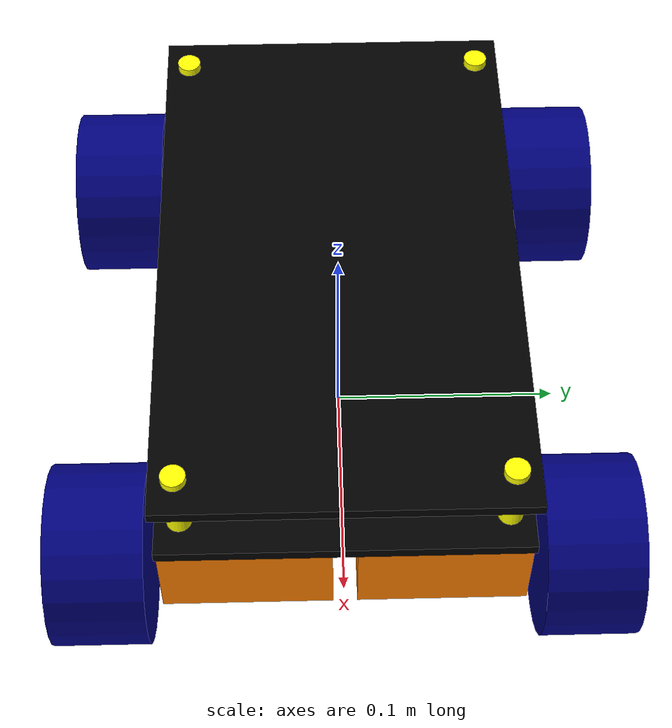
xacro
<?xml version="1.0"?>
<robot name="whag" xmlns:xacro="http://www.ros.org/wiki/xacro">

    <xacro:include filename="common_properties.xacro" />
    <xacro:include filename="mobile_base.xacro" />
    <xacro:include filename="mobile_base_gazebo.xacro" />

</robot>

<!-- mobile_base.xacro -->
<robot xmlns:xacro="http://www.ros.org/wiki/xacro">

    <xacro:include filename="base.xacro"/>
    <xacro:include filename="pillar.xacro"/>
    <xacro:include filename="motor.xacro"/>
    <xacro:include filename="wheel.xacro"/>

    <link name="world_link" />

    <xacro:robot_base parent="world_link" child="first_base_link" xyz="0 0 0.075" rpy="0 0 0" />
    <xacro:robot_base parent="first_base_link" child="second_base_link" xyz="0 0 0.03" rpy="0 0 0" />

    <xacro:robot_pillar parent="first_base_link" child="first_front_left_pillar_link" xyz="0.11 0.065 0.006" rpy="0 0 0" />
    <xacro:robot_pillar parent="first_base_link" child="first_front_right_pillar_link" xyz="0.11 -0.065 0.006" rpy="0 0 0" />
    <xacro:robot_pillar parent="first_base_link" child="first_back_left_pillar_link" xyz="-0.11 0.065 0.006" rpy="0 0 0" />
    <xacro:robot_pillar parent="first_base_link" child="first_back_right_pillar_link" xyz="-0.11 -0.065 0.006" rpy="0 0 0" />

    <xacro:robot_motor parent="first_base_link" child="front_left_motor_link" xyz="0.10 0.040 -0.025" rpy="0 0 0" />
    <xacro:robot_motor parent="first_base_link" child="front_right_motor_link" xyz="0.10 -0.040 -0.025" rpy="0 0 0" />
    <xacro:robot_motor parent="first_base_link" child="back_left_motor_link" xyz="-0.10 0.040 -0.025" rpy="0 0 0" />
    <xacro:robot_motor parent="first_base_link" child="back_right_motor_link" xyz="-0.10 -0.040 -0.025" rpy="0 0 0" />

    <xacro:wheel parent="front_left_motor_link" child="front_left_wheel_link" xyz="0.0 0.060 -0.015" rpy="1.57 0 0" />
    <xacro:wheel parent="front_right_motor_link" child="front_right_wheel_link" xyz="0.0 -0.060 -0.015" rpy="1.57 0 0" />
    <xacro:wheel parent="back_left_motor_link" child="back_left_wheel_link" xyz="0.0 0.060 -0.015" rpy="1.57 0 0"  />
    <xacro:wheel parent="back_right_motor_link" child="back_right_wheel_link" xyz="0.0 -0.060 -0.015" rpy="1.57 0 0" />

</robot>

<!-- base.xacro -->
<robot xmlns:xacro="http://wiki.ros.org/xacro">

  <xacro:macro name="robot_base" params="parent child xyz rpy">

    <link name="${child}">
      <visual>
        <geometry>
          <box size="0.25 0.15 0.005" />
        </geometry>
        <material name="black">
          <color rgba="0.0 0.0 0.0 1" />
        </material>
      </visual>
      <collision>
        <geometry>
          <box size="0.25 0.15 0.005" />
        </geometry>
      </collision>
      <inertial>
        <mass value="0.5" />
        <inertia ixx="0.015" ixy="0" ixz="0" iyy="0.0375" iyz="0.0" izz="0.0275" />
      </inertial>
    </link>

    <joint name="${parent}_to_${child}_joint" type="fixed">
      <origin xyz="${xyz}" rpy="${rpy}" />
      <parent link="${parent}" />
      <child link="${child}" />
    </joint>

  </xacro:macro>
</robot>

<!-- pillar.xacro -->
<robot xmlns:xacro="http://wiki.ros.org/xacro">

  <xacro:macro name="robot_pillar" params="parent child xyz rpy">

    <link name="${child}">
      <visual>
        <geometry>
          <cylinder radius="0.005" length="0.06" />
        </geometry>
        <material name="yellow">
          <color rgba="1.0 1.0 0 1" />
        </material>

      </visual>
      <collision>
        <geometry>
          <cylinder radius="0.005" length="0.06" />
        </geometry>
      </collision>
      <inertial>
        <mass value="0.1" />
        <inertia ixx="0.015" ixy="0" ixz="0" iyy="0.0375" iyz="0.0" izz="0.0275" />
      </inertial>
    </link>

    <joint name="${parent}_to_${child}_joint" type="fixed">
      <origin xyz="${xyz}" rpy="${rpy}" />
      <parent link="${parent}" />
      <child link="${child}" />
    </joint>

  </xacro:macro>

</robot>

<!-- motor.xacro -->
<robot xmlns:xacro="http://wiki.ros.org/xacro">

  <xacro:macro name="robot_motor" params="parent child xyz rpy">

    <link name="${child}">
      <visual>
        <geometry>
          <box size="0.04 0.07 0.045" />
        </geometry>
        <material name="orange">
          <color rgba="1.0 0.5 0 1" />
        </material>
      </visual>
      <collision>
        <geometry>
          <box size="0.04 0.07 0.045" />
        </geometry>
      </collision>
      <inertial>
        <mass value="0.2" />
        <inertia ixx="0.015" ixy="0" ixz="0" iyy="0.0375" iyz="0.0" izz="0.0275" />
      </inertial>
    </link>

    <joint name="${parent}_to_${child}_joint" type="fixed">
      <origin xyz="${xyz}" rpy="${rpy}" />
      <parent link="${parent}" />
      <child link="${child}" />
    </joint>

  </xacro:macro>

</robot>

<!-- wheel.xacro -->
<robot xmlns:xacro="http://wiki.ros.org/xacro">

  <xacro:macro name="wheel" params="parent child xyz rpy">

    <link name="${child}">
      <visual>
        <geometry>
          <cylinder radius="0.0375" length="0.04"/>
        </geometry>
        <material name="blue">
          <color rgba="0 0 0.5 1" />
        </material>
      </visual>
      <collision>
        <geometry>
          <cylinder radius="0.0375" length="0.04"/>
        </geometry>
      </collision>
      <inertial>
        <mass value="0.1" />
        <inertia ixx="0.015" ixy="0" ixz="0" iyy="0.0375" iyz="0.0" izz="0.0275" />
      </inertial>
    </link>

    <joint name="${parent}_to_${child}_joint" type="fixed">
        <axis xyz="0.0 0.0 1"/>
        <origin xyz="${xyz}" rpy="${rpy}" />
        <parent link="${parent}" />
        <child link="${child}" />
    </joint>

  </xacro:macro>

</robot>
